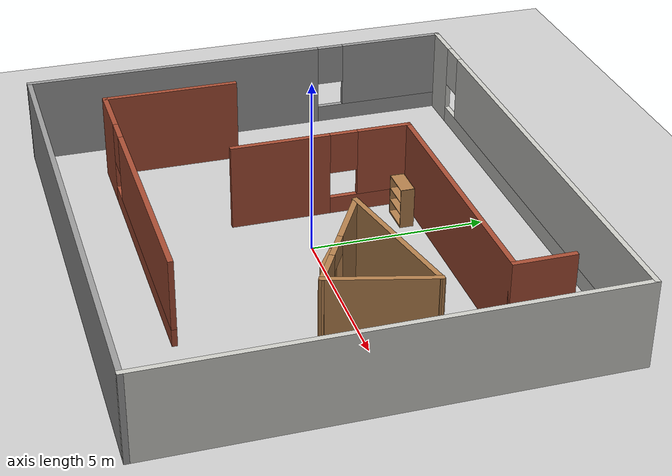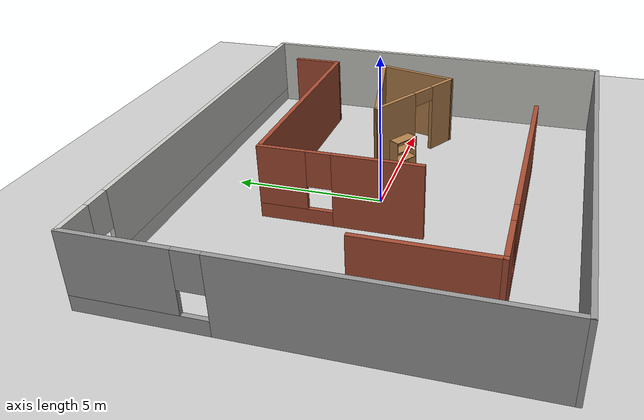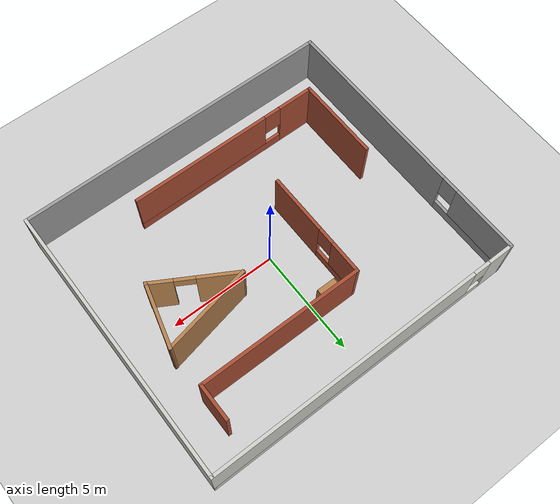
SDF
<sdf version="1.7">
 <world name="default">
  <light name="sun" type="directional">
   <pose>0 0 10 0 -0 0</pose>
   <diffuse>0.8 0.8 0.8 1</diffuse>
   <specular>0.2 0.2 0.2 1</specular>
   <attenuation>
    <range>1000</range>
    <constant>0.9</constant>
    <linear>0.01</linear>
    <quadratic>0.001</quadratic>
   </attenuation>
   <direction>-0.5 0.1 -0.9</direction>
   <spot><inner_angle>0</inner_angle><outer_angle>0</outer_angle><falloff>0</falloff></spot>
  </light>
  <model name="ground_plane">
   <static>1</static>
   <link name="link">
    <collision name="collision">
     <geometry><plane><normal>0 0 1</normal><size>100 100</size></plane></geometry>
     <surface>
      <contact><collide_bitmask>65535</collide_bitmask></contact>
      <friction><ode><mu>100</mu><mu2>50</mu2></ode></friction>
     </surface>
    </collision>
    <visual name="visual">
     <cast_shadows>0</cast_shadows>
     <geometry><plane><normal>0 0 1</normal><size>100 100</size></plane></geometry>
     <material>
      <script><uri>file://media/materials/scripts/gazebo.material</uri><name>Gazebo/Grey</name></script>
     </material>
    </visual>
   </link>
  </model>
  <gravity>0 0 -9.8</gravity>
  <magnetic_field>6e-06 2.3e-05 -4.2e-05</magnetic_field>
  <atmosphere type="adiabatic"/>
  <physics type="ode">
   <max_step_size>0.001</max_step_size>
   <real_time_factor>1</real_time_factor>
   <real_time_update_rate>1000</real_time_update_rate>
  </physics>
  <scene><ambient>0.4 0.4 0.4 1</ambient><background>0.7 0.7 0.7 1</background><shadows>1</shadows></scene>
  <audio><device>default</device></audio>
  <spherical_coordinates>
   <surface_model>EARTH_WGS84</surface_model>
   <latitude_deg>0</latitude_deg>
   <longitude_deg>0</longitude_deg>
   <elevation>0</elevation>
   <heading_deg>0</heading_deg>
  </spherical_coordinates>
  <model name="test_world_room">
   <pose>0.070476 -0.128188 0 0 -0 0</pose>
   <link name="Wall_1">
    <collision name="Wall_1_Collision">
     <geometry><box><size>4 0.15 2.5</size></box></geometry>
     <pose>0 0 1.25 0 -0 0</pose>
    </collision>
    <visual name="Wall_1_Visual">
     <pose>0 0 1.25 0 -0 0</pose>
     <geometry><box><size>4 0.15 2.5</size></box></geometry>
     <material>
      <script><uri>file://media/materials/scripts/gazebo.material</uri><name>Gazebo/Bricks</name></script>
      <ambient>1 1 1 1</ambient>
     </material>
     <meta><layer>0</layer></meta>
    </visual>
    <pose>-5.79 -2.52218 0 0 -0 1.5708</pose>
   </link>
   <link name="Wall_11">
    <pose>-1.82934 0.931062 0 0 -0 1.5708</pose>
    <visual name="Wall_11_Visual_0">
     <pose>-1.1922 0 1.25 0 -0 0</pose>
     <geometry><box><size>2.86559 0.15 2.5</size></box></geometry>
     <material>
      <script><uri>file://media/materials/scripts/gazebo.material</uri><name>Gazebo/Bricks</name></script>
      <ambient>1 1 1 1</ambient>
     </material>
     <meta><layer>0</layer></meta>
    </visual>
    <collision name="Wall_11_Collision_0">
     <geometry><box><size>2.86559 0.15 2.5</size></box></geometry>
     <pose>-1.1922 0 1.25 0 -0 0</pose>
    </collision>
    <visual name="Wall_11_Visual_1">
     <pose>1.4328 0 0.25 0 -0 0</pose>
     <geometry><box><size>2.38441 0.15 0.5</size></box></geometry>
     <material>
      <script><uri>file://media/materials/scripts/gazebo.material</uri><name>Gazebo/Bricks</name></script>
      <ambient>1 1 1 1</ambient>
     </material>
     <meta><layer>0</layer></meta>
    </visual>
    <collision name="Wall_11_Collision_1">
     <geometry><box><size>2.38441 0.15 0.5</size></box></geometry>
     <pose>1.4328 0 0.25 0 -0 0</pose>
    </collision>
    <visual name="Wall_11_Visual_2">
     <pose>1.8328 0 1.5 0 -0 0</pose>
     <geometry><box><size>1.58441 0.15 2</size></box></geometry>
     <material>
      <script><uri>file://media/materials/scripts/gazebo.material</uri><name>Gazebo/Bricks</name></script>
      <ambient>1 1 1 1</ambient>
     </material>
     <meta><layer>0</layer></meta>
    </visual>
    <collision name="Wall_11_Collision_2">
     <geometry><box><size>1.58441 0.15 2</size></box></geometry>
     <pose>1.8328 0 1.5 0 -0 0</pose>
    </collision>
    <visual name="Wall_11_Visual_3">
     <pose>0.640594 0 1.9 0 -0 0</pose>
     <geometry><box><size>0.8 0.15 1.2</size></box></geometry>
     <material>
      <script><uri>file://media/materials/scripts/gazebo.material</uri><name>Gazebo/Bricks</name></script>
      <ambient>1 1 1 1</ambient>
     </material>
     <meta><layer>0</layer></meta>
    </visual>
    <collision name="Wall_11_Collision_3">
     <geometry><box><size>0.8 0.15 1.2</size></box></geometry>
     <pose>0.640594 0 1.9 0 -0 0</pose>
    </collision>
   </link>
   <link name="Wall_12">
    <collision name="Wall_12_Collision">
     <geometry><box><size>7.75 0.15 2.5</size></box></geometry>
     <pose>0 0 1.25 0 -0 0</pose>
    </collision>
    <visual name="Wall_12_Visual">
     <pose>0 0 1.25 0 -0 0</pose>
     <geometry><box><size>7.75 0.15 2.5</size></box></geometry>
     <material>
      <script><uri>file://media/materials/scripts/gazebo.material</uri><name>Gazebo/Bricks</name></script>
      <ambient>1 1 1 1</ambient>
     </material>
     <meta><layer>0</layer></meta>
    </visual>
    <pose>1.97066 3.48106 0 0 -0 0</pose>
   </link>
   <link name="Wall_13">
    <collision name="Wall_13_Collision">
     <geometry><box><size>1.75 0.15 2.5</size></box></geometry>
     <pose>0 0 1.25 0 -0 0</pose>
    </collision>
    <visual name="Wall_13_Visual">
     <pose>0 0 1.25 0 -0 0</pose>
     <geometry><box><size>1.75 0.15 2.5</size></box></geometry>
     <material>
      <script><uri>file://media/materials/scripts/gazebo.material</uri><name>Gazebo/Bricks</name></script>
      <ambient>1 1 1 1</ambient>
     </material>
     <meta><layer>0</layer></meta>
    </visual>
    <pose>5.77066 4.28106 0 0 -0 1.5708</pose>
   </link>
   <link name="Wall_16">
    <collision name="Wall_16_Collision">
     <geometry><box><size>15 0.15 2.5</size></box></geometry>
     <pose>0 0 1.25 0 -0 0</pose>
    </collision>
    <visual name="Wall_16_Visual">
     <pose>0 0 1.25 0 -0 0</pose>
     <geometry><box><size>15 0.15 2.5</size></box></geometry>
     <material>
      <script><uri>file://media/materials/scripts/gazebo.material</uri><name>Gazebo/Grey</name></script>
      <ambient>1 1 1 1</ambient>
     </material>
     <meta><layer>0</layer></meta>
    </visual>
    <pose>-0 -6.425 0 0 -0 0</pose>
   </link>
   <link name="Wall_22">
    <pose>-7.425 0 0 0 -0 1.5708</pose>
    <visual name="Wall_22_Visual_0">
     <pose>-2.00495 0 1.25 0 -0 0</pose>
     <geometry><box><size>8.9901 0.15 2.5</size></box></geometry>
     <material>
      <script><uri>file://media/materials/scripts/gazebo.material</uri><name>Gazebo/Grey</name></script>
      <ambient>1 1 1 1</ambient>
     </material>
     <meta><layer>0</layer></meta>
    </visual>
    <collision name="Wall_22_Collision_0">
     <geometry><box><size>8.9901 0.15 2.5</size></box></geometry>
     <pose>-2.00495 0 1.25 0 -0 0</pose>
    </collision>
    <visual name="Wall_22_Visual_1">
     <pose>4.49505 0 0.25 0 -0 0</pose>
     <geometry><box><size>4.0099 0.15 0.5</size></box></geometry>
     <material>
      <script><uri>file://media/materials/scripts/gazebo.material</uri><name>Gazebo/Grey</name></script>
      <ambient>1 1 1 1</ambient>
     </material>
     <meta><layer>0</layer></meta>
    </visual>
    <collision name="Wall_22_Collision_1">
     <geometry><box><size>4.0099 0.15 0.5</size></box></geometry>
     <pose>4.49505 0 0.25 0 -0 0</pose>
    </collision>
    <visual name="Wall_22_Visual_2">
     <pose>4.89505 0 1.5 0 -0 0</pose>
     <geometry><box><size>3.2099 0.15 2</size></box></geometry>
     <material>
      <script><uri>file://media/materials/scripts/gazebo.material</uri><name>Gazebo/Grey</name></script>
      <ambient>1 1 1 1</ambient>
     </material>
     <meta><layer>0</layer></meta>
    </visual>
    <collision name="Wall_22_Collision_2">
     <geometry><box><size>3.2099 0.15 2</size></box></geometry>
     <pose>4.89505 0 1.5 0 -0 0</pose>
    </collision>
    <visual name="Wall_22_Visual_3">
     <pose>2.8901 0 1.9 0 -0 0</pose>
     <geometry><box><size>0.8 0.15 1.2</size></box></geometry>
     <material>
      <script><uri>file://media/materials/scripts/gazebo.material</uri><name>Gazebo/Grey</name></script>
      <ambient>1 1 1 1</ambient>
     </material>
     <meta><layer>0</layer></meta>
    </visual>
    <collision name="Wall_22_Collision_3">
     <geometry><box><size>0.8 0.15 1.2</size></box></geometry>
     <pose>2.8901 0 1.9 0 -0 0</pose>
    </collision>
   </link>
   <link name="Wall_23">
    <pose>-0 6.425 0 0 -0 0</pose>
    <visual name="Wall_23_Visual_0">
     <pose>-6.86529 0 1.25 0 -0 0</pose>
     <geometry><box><size>1.26943 0.15 2.5</size></box></geometry>
     <material>
      <script><uri>file://media/materials/scripts/gazebo.material</uri><name>Gazebo/CeilingTiled</name></script>
      <ambient>1 1 1 1</ambient>
     </material>
     <meta><layer>0</layer></meta>
    </visual>
    <collision name="Wall_23_Collision_0">
     <geometry><box><size>1.26943 0.15 2.5</size></box></geometry>
     <pose>-6.86529 0 1.25 0 -0 0</pose>
    </collision>
    <visual name="Wall_23_Visual_1">
     <pose>0.634714 0 0.25 0 -0 0</pose>
     <geometry><box><size>13.7306 0.15 0.5</size></box></geometry>
     <material>
      <script><uri>file://media/materials/scripts/gazebo.material</uri><name>Gazebo/CeilingTiled</name></script>
      <ambient>1 1 1 1</ambient>
     </material>
     <meta><layer>0</layer></meta>
    </visual>
    <collision name="Wall_23_Collision_1">
     <geometry><box><size>13.7306 0.15 0.5</size></box></geometry>
     <pose>0.634714 0 0.25 0 -0 0</pose>
    </collision>
    <visual name="Wall_23_Visual_2">
     <pose>1.03471 0 1.5 0 -0 0</pose>
     <geometry><box><size>12.9306 0.15 2</size></box></geometry>
     <material>
      <script><uri>file://media/materials/scripts/gazebo.material</uri><name>Gazebo/CeilingTiled</name></script>
      <ambient>1 1 1 1</ambient>
     </material>
     <meta><layer>0</layer></meta>
    </visual>
    <collision name="Wall_23_Collision_2">
     <geometry><box><size>12.9306 0.15 2</size></box></geometry>
     <pose>1.03471 0 1.5 0 -0 0</pose>
    </collision>
    <visual name="Wall_23_Visual_3">
     <pose>-5.83057 0 1.9 0 -0 0</pose>
     <geometry><box><size>0.8 0.15 1.2</size></box></geometry>
     <material>
      <script><uri>file://media/materials/scripts/gazebo.material</uri><name>Gazebo/CeilingTiled</name></script>
      <ambient>1 1 1 1</ambient>
     </material>
     <meta><layer>0</layer></meta>
    </visual>
    <collision name="Wall_23_Collision_3">
     <geometry><box><size>0.8 0.15 1.2</size></box></geometry>
     <pose>-5.83057 0 1.9 0 -0 0</pose>
    </collision>
   </link>
   <link name="Wall_24">
    <collision name="Wall_24_Collision">
     <geometry><box><size>13 0.15 2.5</size></box></geometry>
     <pose>0 0 1.25 0 -0 0</pose>
    </collision>
    <visual name="Wall_24_Visual">
     <pose>0 0 1.25 0 -0 0</pose>
     <geometry><box><size>13 0.15 2.5</size></box></geometry>
     <material>
      <script><uri>file://media/materials/scripts/gazebo.material</uri><name>Gazebo/CeilingTiled</name></script>
      <ambient>1 1 1 1</ambient>
     </material>
     <meta><layer>0</layer></meta>
    </visual>
    <pose>7.425 0 0 0 -0 -1.5708</pose>
   </link>
   <link name="Wall_3">
    <pose>-1.24 -4.44718 0 0 -0 0</pose>
    <visual name="Wall_3_Visual_0">
     <pose>-3.74956 0 1.25 0 -0 0</pose>
     <geometry><box><size>1.75088 0.15 2.5</size></box></geometry>
     <material>
      <script><uri>file://media/materials/scripts/gazebo.material</uri><name>Gazebo/Bricks</name></script>
      <ambient>1 1 1 1</ambient>
     </material>
     <meta><layer>0</layer></meta>
    </visual>
    <collision name="Wall_3_Collision_0">
     <geometry><box><size>1.75088 0.15 2.5</size></box></geometry>
     <pose>-3.74956 0 1.25 0 -0 0</pose>
    </collision>
    <visual name="Wall_3_Visual_1">
     <pose>0.875439 0 0.25 0 -0 0</pose>
     <geometry><box><size>7.49912 0.15 0.5</size></box></geometry>
     <material>
      <script><uri>file://media/materials/scripts/gazebo.material</uri><name>Gazebo/Bricks</name></script>
      <ambient>1 1 1 1</ambient>
     </material>
     <meta><layer>0</layer></meta>
    </visual>
    <collision name="Wall_3_Collision_1">
     <geometry><box><size>7.49912 0.15 0.5</size></box></geometry>
     <pose>0.875439 0 0.25 0 -0 0</pose>
    </collision>
    <visual name="Wall_3_Visual_2">
     <pose>1.27544 0 1.5 0 -0 0</pose>
     <geometry><box><size>6.69912 0.15 2</size></box></geometry>
     <material>
      <script><uri>file://media/materials/scripts/gazebo.material</uri><name>Gazebo/Bricks</name></script>
      <ambient>1 1 1 1</ambient>
     </material>
     <meta><layer>0</layer></meta>
    </visual>
    <collision name="Wall_3_Collision_2">
     <geometry><box><size>6.69912 0.15 2</size></box></geometry>
     <pose>1.27544 0 1.5 0 -0 0</pose>
    </collision>
    <visual name="Wall_3_Visual_3">
     <pose>-2.47412 0 1.9 0 -0 0</pose>
     <geometry><box><size>0.8 0.15 1.2</size></box></geometry>
     <material>
      <script><uri>file://media/materials/scripts/gazebo.material</uri><name>Gazebo/Bricks</name></script>
      <ambient>1 1 1 1</ambient>
     </material>
     <meta><layer>0</layer></meta>
    </visual>
    <collision name="Wall_3_Collision_3">
     <geometry><box><size>0.8 0.15 1.2</size></box></geometry>
     <pose>-2.47412 0 1.9 0 -0 0</pose>
    </collision>
   </link>
   <link name="Wall_7">
    <pose>3.45253 -0.198379 0 0 -0 -0.523599</pose>
    <visual name="Wall_7_Visual_0">
     <pose>-1.02888 0 1.25 0 -0 0</pose>
     <geometry><box><size>1.94223 0.15 2.5</size></box></geometry>
     <material>
      <script><uri>file://media/materials/scripts/gazebo.material</uri><name>Gazebo/Wood</name></script>
      <ambient>1 1 1 1</ambient>
     </material>
     <meta><layer>0</layer></meta>
    </visual>
    <collision name="Wall_7_Collision_0">
     <geometry><box><size>1.94223 0.15 2.5</size></box></geometry>
     <pose>-1.02888 0 1.25 0 -0 0</pose>
    </collision>
    <visual name="Wall_7_Visual_1">
     <pose>1.42112 0 1.25 0 -0 0</pose>
     <geometry><box><size>1.15777 0.15 2.5</size></box></geometry>
     <material>
      <script><uri>file://media/materials/scripts/gazebo.material</uri><name>Gazebo/Wood</name></script>
      <ambient>1 1 1 1</ambient>
     </material>
     <meta><layer>0</layer></meta>
    </visual>
    <collision name="Wall_7_Collision_1">
     <geometry><box><size>1.15777 0.15 2.5</size></box></geometry>
     <pose>1.42112 0 1.25 0 -0 0</pose>
    </collision>
    <visual name="Wall_7_Visual_2">
     <pose>0.392232 0 2.25 0 -0 0</pose>
     <geometry><box><size>0.9 0.15 0.5</size></box></geometry>
     <material>
      <script><uri>file://media/materials/scripts/gazebo.material</uri><name>Gazebo/Wood</name></script>
      <ambient>1 1 1 1</ambient>
     </material>
     <meta><layer>0</layer></meta>
    </visual>
    <collision name="Wall_7_Collision_2">
     <geometry><box><size>0.9 0.15 0.5</size></box></geometry>
     <pose>0.392232 0 2.25 0 -0 0</pose>
    </collision>
   </link>
   <link name="Wall_8">
    <collision name="Wall_8_Collision">
     <geometry><box><size>3 0.15 2.5</size></box></geometry>
     <pose>0 0 1.25 0 -0 0</pose>
    </collision>
    <visual name="Wall_8_Visual">
     <pose>0 0 1.25 0 -0 0</pose>
     <geometry><box><size>3 0.15 2.5</size></box></geometry>
     <material>
      <script><uri>file://media/materials/scripts/gazebo.material</uri><name>Gazebo/Wood</name></script>
      <ambient>1 1 1 1</ambient>
     </material>
     <meta><layer>0</layer></meta>
    </visual>
    <pose>5.48845 0.215565 0 0 -0 1.309</pose>
   </link>
   <link name="Wall_9">
    <collision name="Wall_9_Collision">
     <geometry><box><size>4.30514 0.15 2.5</size></box></geometry>
     <pose>0 0 1.25 0 -0 0</pose>
    </collision>
    <visual name="Wall_9_Visual">
     <pose>0 0 1.25 0 -0 0</pose>
     <geometry><box><size>4.30514 0.15 2.5</size></box></geometry>
     <material>
      <script><uri>file://media/materials/scripts/gazebo.material</uri><name>Gazebo/Wood</name></script>
      <ambient>1 1 1 1</ambient>
     </material>
     <meta><layer>0</layer></meta>
    </visual>
    <pose>3.82135 1.17806 0 0 -0 -2.94101</pose>
   </link>
   <static>1</static>
  </model>
  <model name="bookshelf">
   <static>1</static>
   <link name="link">
    <inertial><mass>1</mass></inertial>
    <collision name="back">
     <pose>0 0.005 0.6 0 -0 0</pose>
     <geometry><box><size>0.9 0.01 1.2</size></box></geometry>
    </collision>
    <visual name="visual1">
     <pose>0 0.005 0.6 0 -0 0</pose>
     <geometry><box><size>0.9 0.01 1.2</size></box></geometry>
     <material>
      <script><uri>file://media/materials/scripts/gazebo.material</uri><name>Gazebo/Wood</name></script>
     </material>
    </visual>
    <collision name="left_side">
     <pose>0.45 -0.195 0.6 0 -0 0</pose>
     <geometry><box><size>0.02 0.4 1.2</size></box></geometry>
    </collision>
    <visual name="visual2">
     <pose>0.45 -0.195 0.6 0 -0 0</pose>
     <geometry><box><size>0.02 0.4 1.2</size></box></geometry>
     <material>
      <script><uri>file://media/materials/scripts/gazebo.material</uri><name>Gazebo/Wood</name></script>
     </material>
    </visual>
    <collision name="right_side">
     <pose>-0.45 -0.195 0.6 0 -0 0</pose>
     <geometry><box><size>0.02 0.4 1.2</size></box></geometry>
    </collision>
    <visual name="visual3">
     <pose>-0.45 -0.195 0.6 0 -0 0</pose>
     <geometry><box><size>0.02 0.4 1.2</size></box></geometry>
     <material>
      <script><uri>file://media/materials/scripts/gazebo.material</uri><name>Gazebo/Wood</name></script>
     </material>
    </visual>
    <collision name="bottom">
     <pose>0 -0.195 0.03 0 -0 0</pose>
     <geometry><box><size>0.88 0.4 0.06</size></box></geometry>
    </collision>
    <visual name="visual4">
     <pose>0 -0.195 0.03 0 -0 0</pose>
     <geometry><box><size>0.88 0.4 0.06</size></box></geometry>
     <material>
      <script><uri>file://media/materials/scripts/gazebo.material</uri><name>Gazebo/Wood</name></script>
     </material>
    </visual>
    <collision name="top">
     <pose>0 -0.195 1.19 0 -0 0</pose>
     <geometry><box><size>0.88 0.4 0.02</size></box></geometry>
    </collision>
    <visual name="visual5">
     <pose>0 -0.195 1.19 0 -0 0</pose>
     <geometry><box><size>0.88 0.4 0.02</size></box></geometry>
     <material>
      <script><uri>file://media/materials/scripts/gazebo.material</uri><name>Gazebo/Wood</name></script>
     </material>
    </visual>
    <collision name="low_shelf">
     <pose>0 -0.195 0.43 0 -0 0</pose>
     <geometry><box><size>0.88 0.4 0.02</size></box></geometry>
    </collision>
    <visual name="visual6">
     <pose>0 -0.195 0.43 0 -0 0</pose>
     <geometry><box><size>0.88 0.4 0.02</size></box></geometry>
     <material>
      <script><uri>file://media/materials/scripts/gazebo.material</uri><name>Gazebo/Wood</name></script>
     </material>
    </visual>
    <collision name="high_shelf">
     <pose>0 -0.195 0.8 0 -0 0</pose>
     <geometry><box><size>0.88 0.4 0.02</size></box></geometry>
    </collision>
    <visual name="visual7">
     <pose>0 -0.195 0.8 0 -0 0</pose>
     <geometry><box><size>0.88 0.4 0.02</size></box></geometry>
     <material>
      <script><uri>file://media/materials/scripts/gazebo.material</uri><name>Gazebo/Wood</name></script>
     </material>
    </visual>
   </link>
   <pose>-0.80433 3.08296 0 0 -0 0</pose>
  </model>
  <model name="bookshelf_0">
   <static>1</static>
   <link name="link">
    <inertial><mass>1</mass></inertial>
    <collision name="back">
     <pose>0 0.005 0.6 0 -0 0</pose>
     <geometry><box><size>0.9 0.01 1.2</size></box></geometry>
    </collision>
    <visual name="visual1">
     <pose>0 0.005 0.6 0 -0 0</pose>
     <geometry><box><size>0.9 0.01 1.2</size></box></geometry>
     <material>
      <script><uri>file://media/materials/scripts/gazebo.material</uri><name>Gazebo/Wood</name></script>
     </material>
    </visual>
    <collision name="left_side">
     <pose>0.45 -0.195 0.6 0 -0 0</pose>
     <geometry><box><size>0.02 0.4 1.2</size></box></geometry>
    </collision>
    <visual name="visual2">
     <pose>0.45 -0.195 0.6 0 -0 0</pose>
     <geometry><box><size>0.02 0.4 1.2</size></box></geometry>
     <material>
      <script><uri>file://media/materials/scripts/gazebo.material</uri><name>Gazebo/Wood</name></script>
     </material>
    </visual>
    <collision name="right_side">
     <pose>-0.45 -0.195 0.6 0 -0 0</pose>
     <geometry><box><size>0.02 0.4 1.2</size></box></geometry>
    </collision>
    <visual name="visual3">
     <pose>-0.45 -0.195 0.6 0 -0 0</pose>
     <geometry><box><size>0.02 0.4 1.2</size></box></geometry>
     <material>
      <script><uri>file://media/materials/scripts/gazebo.material</uri><name>Gazebo/Wood</name></script>
     </material>
    </visual>
    <collision name="bottom">
     <pose>0 -0.195 0.03 0 -0 0</pose>
     <geometry><box><size>0.88 0.4 0.06</size></box></geometry>
    </collision>
    <visual name="visual4">
     <pose>0 -0.195 0.03 0 -0 0</pose>
     <geometry><box><size>0.88 0.4 0.06</size></box></geometry>
     <material>
      <script><uri>file://media/materials/scripts/gazebo.material</uri><name>Gazebo/Wood</name></script>
     </material>
    </visual>
    <collision name="top">
     <pose>0 -0.195 1.19 0 -0 0</pose>
     <geometry><box><size>0.88 0.4 0.02</size></box></geometry>
    </collision>
    <visual name="visual5">
     <pose>0 -0.195 1.19 0 -0 0</pose>
     <geometry><box><size>0.88 0.4 0.02</size></box></geometry>
     <material>
      <script><uri>file://media/materials/scripts/gazebo.material</uri><name>Gazebo/Wood</name></script>
     </material>
    </visual>
    <collision name="low_shelf">
     <pose>0 -0.195 0.43 0 -0 0</pose>
     <geometry><box><size>0.88 0.4 0.02</size></box></geometry>
    </collision>
    <visual name="visual6">
     <pose>0 -0.195 0.43 0 -0 0</pose>
     <geometry><box><size>0.88 0.4 0.02</size></box></geometry>
     <material>
      <script><uri>file://media/materials/scripts/gazebo.material</uri><name>Gazebo/Wood</name></script>
     </material>
    </visual>
    <collision name="high_shelf">
     <pose>0 -0.195 0.8 0 -0 0</pose>
     <geometry><box><size>0.88 0.4 0.02</size></box></geometry>
    </collision>
    <visual name="visual7">
     <pose>0 -0.195 0.8 0 -0 0</pose>
     <geometry><box><size>0.88 0.4 0.02</size></box></geometry>
     <material>
      <script><uri>file://media/materials/scripts/gazebo.material</uri><name>Gazebo/Wood</name></script>
     </material>
    </visual>
   </link>
   <pose>2.53175 0.000145 0 0 0 -0.576215</pose>
  </model>
 </world>
</sdf>
